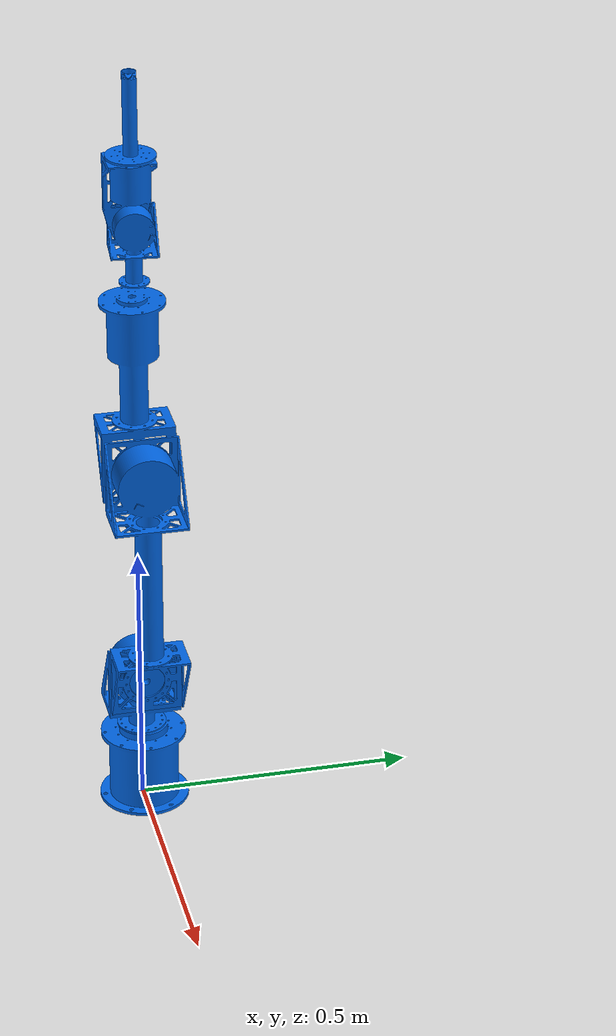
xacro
<?xml version="1.0"?>
<robot xmlns:xacro="http://www.ros.org/wiki/xacro" name="my_robot_arm">
    <xacro:arg name="initial_positions_file" default="initial_positions.yaml" />

    <xacro:include filename="$(find kerabot_description)/urdf/kerabot.urdf.xacro" />

    <xacro:include filename="kerabot.ros2_control.xacro" />

    <xacro:kerabot_ros2_control name="KerabotHardware" initial_positions_file="$(arg initial_positions_file)"/>
</robot>

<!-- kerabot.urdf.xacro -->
<robot name="my_robot_arm" xmlns:xacro="http://www.ros.org/wiki/xacro">

  <material name="red">
    <color rgba="1 0 0 1"/>
  </material>
  <material name="blue">
    <color rgba="0 0.4 0.9 1"/>
  </material>

  <link name="world"/>
  <joint name="world_to_base" type="fixed">
    <parent link="world"/>
    <child link="base_link"/>
  </joint>

  <!-- BASE LINK             -->
  <link name="base_link">
    <visual>
      <origin xyz="0 0 0" rpy="0 0 0"/>
      <geometry>
        <mesh filename="package://kerabot_description/meshes/base_link.stl" scale="0.001 0.001 0.001"/>
      </geometry>
      <material name="blue"/>
    </visual>
    <collision>
      <origin xyz="0 0 0" rpy="0 0 0"/>
      <geometry>
        <mesh filename="package://kerabot_description/meshes/base_link.stl" scale="0.001 0.001 0.001"/>
      </geometry>
    </collision>
    <inertial>
      <origin xyz="0 0.003 0.095" rpy="0 0 0"/>
      <mass value="7.98"/>
      <inertia ixx="0.021" iyy="0.021" izz="0.019" ixy="0.0" ixz="0.0" iyz="0.0"/>
    </inertial>
  </link>

  <link name="link1">
    <visual>
      <origin xyz="0 0.0 0.152" rpy="-3.14 0 -1.57"/>
      <geometry>
        <mesh filename="package://kerabot_description/meshes/Link_1.stl" scale="0.001 0.001 0.001"/>
      </geometry>
      <material name="blue"/>
    </visual>
    <collision>
      <origin xyz="0 0.0 0.152" rpy="-3.14 0 -1.57"/>
      <geometry>
        <mesh filename="package://kerabot_description/meshes/Link_1.stl" scale="0.001 0.001 0.001"/>
      </geometry>
    </collision>
    <inertial>
      <origin xyz="0.0 0.014 0.26" rpy="0 0 0"/>
      <mass value="6.46"/>
      <inertia ixx="0.013" iyy="0.015" izz="0.009" ixy="0.0" ixz="0.0" iyz="-0.001"/>
    </inertial>
  </link>

  <joint name="joint1" type="revolute">
    <parent link="base_link"/>
    <child link="link1"/>
    <axis xyz="0 0 1"/>
    <limit lower="-2.879793" upper="2.879793" effort="5.0" velocity="2.792527"/>
  </joint>

  <link name="link2">
    <visual>
      <origin xyz="0.138 -0.062 0.085" rpy="3.142 0 3.142"/>
      <geometry>
        <mesh filename="package://kerabot_description/meshes/Link_2.stl" scale="0.001 0.001 0.001"/>
      </geometry>
      <material name="blue"/>
    </visual>
    <collision>
      <origin xyz="0.138 -0.062 0.085" rpy="3.142 0 3.142"/>
      <geometry>
        <mesh filename="package://kerabot_description/meshes/Link_2.stl" scale="0.001 0.001 0.001"/>
      </geometry>
    </collision>
    <inertial>
      <origin xyz="0.081 0.0 0.31" rpy="0 0 0"/>
      <mass value="5.098"/>
      <inertia ixx="0.0118" iyy="0.0116" izz="0.009" ixy="0.001" ixz="0.002" iyz="-0.002"/>
    </inertial>
  </link>

  <joint name="joint2" type="revolute">
    <parent link="link1"/>
    <child link="link2"/>
    <origin xyz="0 0 0.264" rpy="0 0 0"/>
    <axis xyz="1 0 0"/>
    <limit lower="-2.879793" upper="2.879793" effort="5.0" velocity="2.792527"/>
  </joint>

  <link name="link3">
    <visual>
      <origin xyz="-0.04 0.06 0.074" rpy="3.142 0 0"/>
      <geometry>
        <mesh filename="package://kerabot_description/meshes/Link_3.stl" scale="0.001 0.001 0.001"/>
      </geometry>
      <material name="blue"/>
    </visual>
    <collision>
      <origin xyz="-0.04 0.06 0.074" rpy="3.142 0 0"/>
      <geometry>
        <mesh filename="package://kerabot_description/meshes/Link_3.stl" scale="0.001 0.001 0.001"/>
      </geometry>
    </collision>
    <inertial>
      <origin xyz="0.005 -0.006 0.18" rpy="0 0 0"/>
      <mass value="3.167"/>
      <inertia ixx="0.034" iyy="0.033" izz="0.005" ixy="0.0" ixz="0.002" iyz="0.0"/>
    </inertial>
  </link>

  <joint name="joint3" type="revolute">
    <parent link="link2"/>
    <child link="link3"/>
    <origin xyz="0 0.0026 0.435" rpy="0 0 0"/>
    <axis xyz="1 0 0"/>
    <limit lower="-2.879793" upper="2.879793" effort="5.0" velocity="2.792527"/>
  </joint>

  <link name="link4">
    <visual>
      <origin xyz="-0.034 0.013 0.045" rpy="3.142 0 0.7"/>
      <geometry>
        <mesh filename="package://kerabot_description/meshes/Link_4.stl" scale="0.001 0.001 0.001"/>
      </geometry>
      <material name="blue"/>
    </visual>
    <collision>
      <origin xyz="-0.034 0.013 0.045" rpy="3.142 0 0.7"/>
      <geometry>
        <mesh filename="package://kerabot_description/meshes/Link_4.stl" scale="0.001 0.001 0.001"/>
      </geometry>
    </collision>
    <inertial>
      <origin xyz="0 0.008 0.09" rpy="0 0 0"/>
      <mass value="1.429"/>
      <inertia ixx="0.002" iyy="0.002" izz="0.001" ixy="0.0" ixz="0.0" iyz="0.0"/>
    </inertial>
  </link>

  <joint name="joint4" type="revolute">
    <parent link="link3"/>
    <child link="link4"/>
    <origin xyz="-0.001 -0.004 0.333" rpy="0 0 0"/>
    <axis xyz="0 0 1"/>
    <limit lower="-2.879793" upper="2.879793" effort="5.0" velocity="2.792527"/>
  </joint>

  <link name="link5">
    <visual>
      <origin xyz="-0.047 0 0.15" rpy="1.57 0 1.57"/>
      <geometry>
        <mesh filename="package://kerabot_description/meshes/Link_5.stl" scale="0.001 0.001 0.001"/>
      </geometry>
      <material name="blue"/>
    </visual>
    <collision>
      <origin xyz="-0.047 0 0.15" rpy="1.57 0 1.57"/>
      <geometry>
        <mesh filename="package://kerabot_description/meshes/Link_5.stl" scale="0.001 0.001 0.001"/>
      </geometry>
    </collision>
    <inertial>
      <origin xyz="0 0.008 0.12" rpy="0 0 0"/>
      <mass value="1.391"/>
      <inertia ixx="0.002" iyy="0.002" izz="0.001" ixy="0.0" ixz="0.0" iyz="0.0"/>
    </inertial>
  </link>

  <joint name="joint5" type="revolute">
    <parent link="link4"/>
    <child link="link5"/>
    <origin xyz="0 0.004 0.08" rpy="0 0 0"/>
    <axis xyz="1 0 0"/>
    <limit lower="-2.879793" upper="2.879793" effort="5.0" velocity="2.792527"/>
  </joint>

  <link name="link6">
    <visual>
      <origin xyz="-0.04 -0.04 0.077" rpy="0 0 0"/>
      <geometry>
        <mesh filename="package://kerabot_description/meshes/weights.STL" scale="0.001 0.001 0.001"/>
      </geometry>
      <material name="blue"/>
    </visual>
    <collision>
      <origin xyz="-0.04 -0.04 0.077" rpy="0 0 0"/>
      <geometry>
        <mesh filename="package://kerabot_description/meshes/weights.STL" scale="0.001 0.001 0.001"/>
      </geometry>
    </collision>
    <inertial>
      <origin xyz="0 0 0.04" rpy="0 0 0"/>
      <mass value="0.2"/>
      <inertia ixx="0.0001" iyy="0.0001" izz="0.0001" ixy="0" ixz="0" iyz="0"/>
    </inertial>
  </link>

  <joint name="joint6" type="revolute">
    <parent link="link5"/>
    <child link="link6"/>
    <origin xyz="0 -0.005 0.08" rpy="0 0 0"/>
    <axis xyz="0 0 1"/>
    <limit lower="-2.879793" upper="2.879793" effort="5.0" velocity="2.792527"/>
  </joint>

</robot>
